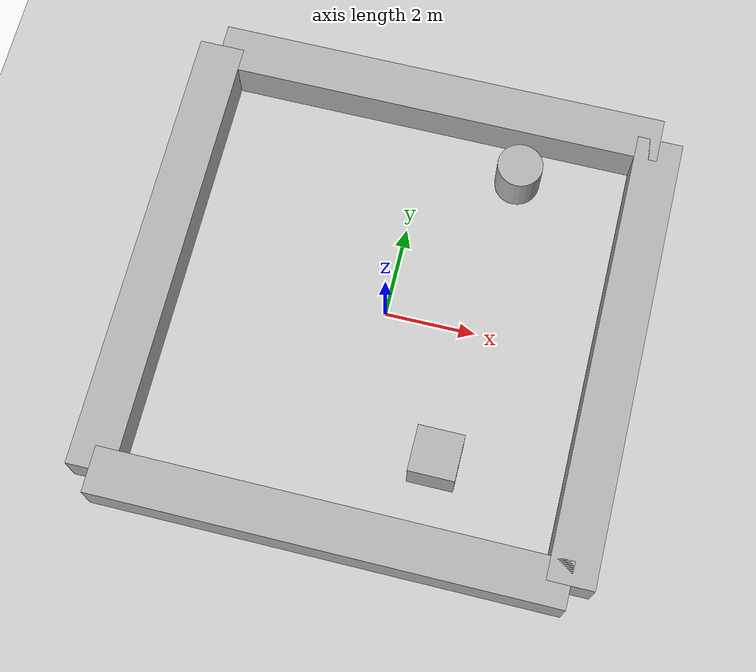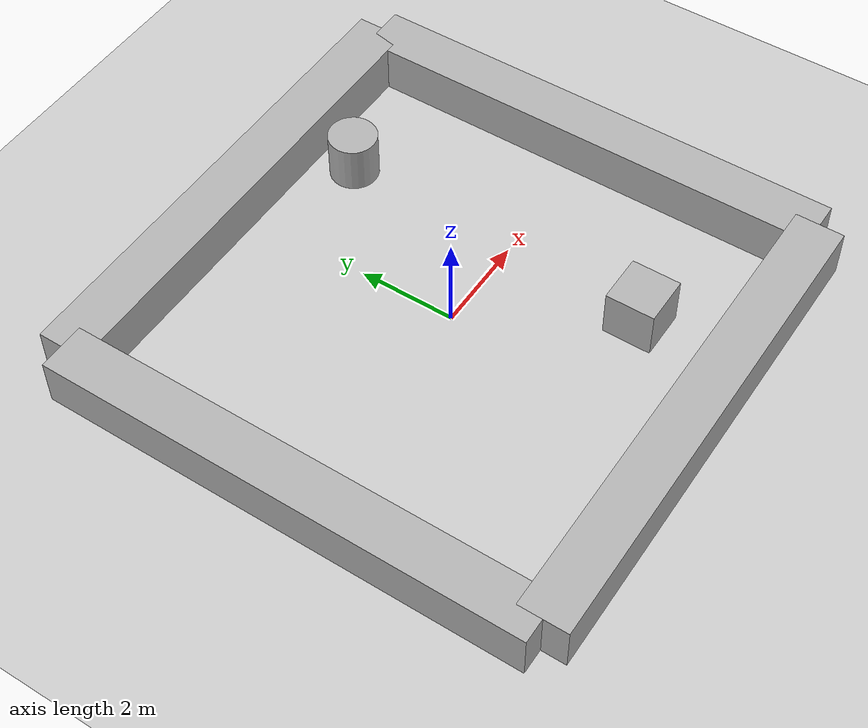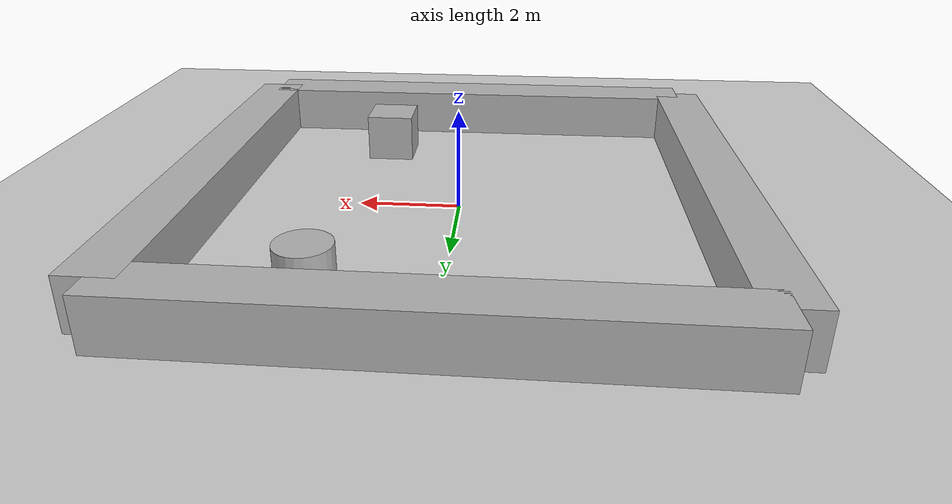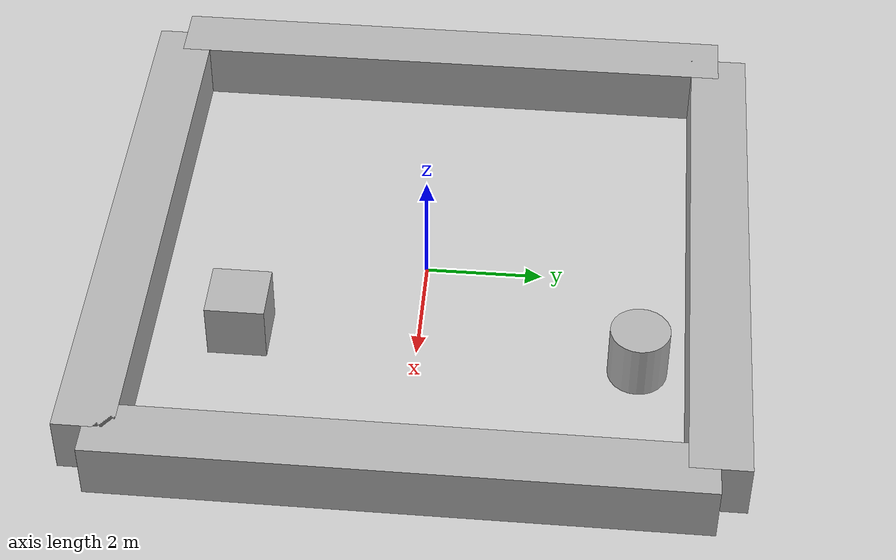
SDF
<sdf version='1.10'>
  <world name='empty'>
    <physics name='1ms' type='ignored'>
      <max_step_size>0.001</max_step_size>
      <real_time_factor>1</real_time_factor>
      <real_time_update_rate>1000</real_time_update_rate>
    </physics>
    <plugin name='gz::sim::systems::Physics' filename='gz-sim-physics-system'/>
    <plugin name='gz::sim::systems::UserCommands' filename='gz-sim-user-commands-system'/>
    <plugin name='gz::sim::systems::SceneBroadcaster' filename='gz-sim-scene-broadcaster-system'/>
    <plugin name='gz::sim::systems::Sensors' filename='gz-sim-sensors-system'>
      <render_engine>ogre2</render_engine>
    </plugin>
    <plugin name='gz::sim::systems::Contact' filename='gz-sim-contact-system'/>
    <gravity>0 0 -9.8000000000000007</gravity>
    <magnetic_field>5.5644999999999998e-06 2.2875799999999999e-05 -4.2388400000000002e-05</magnetic_field>
    <atmosphere type='adiabatic'/>
    <scene>
      <ambient>0.400000006 0.400000006 0.400000006 1</ambient>
      <background>0.699999988 0.699999988 0.699999988 1</background>
      <shadows>true</shadows>
    </scene>
    <model name='ground_plane'>
      <static>true</static>
      <link name='link'>
        <collision name='collision'>
          <geometry>
            <plane>
              <normal>0 0 1</normal>
              <size>100 100</size>
            </plane>
          </geometry>
          <surface>
            <friction>
              <ode/>
            </friction>
            <bounce/>
            <contact/>
          </surface>
        </collision>
        <visual name='visual'>
          <geometry>
            <plane>
              <normal>0 0 1</normal>
              <size>100 100</size>
            </plane>
          </geometry>
          <material>
            <ambient>0.800000012 0.800000012 0.800000012 1</ambient>
            <diffuse>0.800000012 0.800000012 0.800000012 1</diffuse>
            <specular>0.800000012 0.800000012 0.800000012 1</specular>
          </material>
        </visual>
        <pose>0 0 0 0 0 0</pose>
        <inertial>
          <pose>0 0 0 0 0 0</pose>
          <mass>1</mass>
          <inertia>
            <ixx>1</ixx>
            <ixy>0</ixy>
            <ixz>0</ixz>
            <iyy>1</iyy>
            <iyz>0</iyz>
            <izz>1</izz>
          </inertia>
        </inertial>
        <enable_wind>false</enable_wind>
      </link>
      <pose>0 0 0 0 0 0</pose>
      <self_collide>false</self_collide>
    </model>

    <model name='north_wall'>
      <pose>5 0 0.5 0.0, 0.0, 0.0</pose>
      <link name='box_link'>
        <inertial>
          <inertia>
            <ixx>0.16666</ixx>
            <ixy>0</ixy>
            <ixz>0</ixz>
            <iyy>0.16666</iyy>
            <iyz>0</iyz>
            <izz>0.16666</izz>
          </inertia>
          <mass>1</mass>
          <pose>0 0 0 0 0 0</pose>
        </inertial>
        <collision name='box_collision'>
          <geometry>
            <box>
              <size>1 10 1</size>
            </box>
          </geometry>
          <surface>
            <friction>
              <ode/>
            </friction>
            <bounce/>
            <contact/>
          </surface>
        </collision>
        <visual name='box_visual'>
          <geometry>
            <box>
              <size>1 10 1</size>
            </box>
          </geometry>
          <material>
            <ambient>0.300000012 0.300000012 0.300000012 1</ambient>
            <diffuse>0.699999988 0.699999988 0.699999988 1</diffuse>
            <specular>1 1 1 1</specular>
          </material>
        </visual>
        <pose>0 0 0 0 0 0</pose>
        <enable_wind>false</enable_wind>
      </link>
      <static>true</static>
      <self_collide>false</self_collide>
    </model>
    <model name='south_wall'>
      <pose>-5 0 0.5 0.0, 0.0, 0.0</pose>
      <link name='box_link'>
        <inertial>
          <inertia>
            <ixx>0.16666</ixx>
            <ixy>0</ixy>
            <ixz>0</ixz>
            <iyy>0.16666</iyy>
            <iyz>0</iyz>
            <izz>0.16666</izz>
          </inertia>
          <mass>1</mass>
          <pose>0 0 0 0 0 0</pose>
        </inertial>
        <collision name='box_collision'>
          <geometry>
            <box>
              <size>1 10 1</size>
            </box>
          </geometry>
          <surface>
            <friction>
              <ode/>
            </friction>
            <bounce/>
            <contact/>
          </surface>
        </collision>
        <visual name='box_visual'>
          <geometry>
            <box>
              <size>1 10 1</size>
            </box>
          </geometry>
          <material>
            <ambient>0.300000012 0.300000012 0.300000012 1</ambient>
            <diffuse>0.699999988 0.699999988 0.699999988 1</diffuse>
            <specular>1 1 1 1</specular>
          </material>
        </visual>
        <pose>0 0 0 0 0 0</pose>
        <enable_wind>false</enable_wind>
      </link>
      <static>true</static>
      <self_collide>false</self_collide>
    </model>
    <model name='west_wall'>
      <pose>0 5 0.5 0.0, 0.0, 0.0</pose>
      <link name='box_link'>
        <inertial>
          <inertia>
            <ixx>0.16666</ixx>
            <ixy>0</ixy>
            <ixz>0</ixz>
            <iyy>0.16666</iyy>
            <iyz>0</iyz>
            <izz>0.16666</izz>
          </inertia>
          <mass>1</mass>
          <pose>0 0 0 0 0 0</pose>
        </inertial>
        <collision name='box_collision'>
          <geometry>
            <box>
              <size>10 1 1</size>
            </box>
          </geometry>
          <surface>
            <friction>
              <ode/>
            </friction>
            <bounce/>
            <contact/>
          </surface>
        </collision>
        <visual name='box_visual'>
          <geometry>
            <box>
              <size>10 1 1</size>
            </box>
          </geometry>
          <material>
            <ambient>0.300000012 0.300000012 0.300000012 1</ambient>
            <diffuse>0.699999988 0.699999988 0.699999988 1</diffuse>
            <specular>1 1 1 1</specular>
          </material>
        </visual>
        <pose>0 0 0 0 0 0</pose>
        <enable_wind>false</enable_wind>
      </link>
      <static>true</static>
      <self_collide>false</self_collide>
    </model>
    <model name='east_wall_wall'>
      <pose>0 -5 0.5 0.0, 0.0, 0.0</pose>
      <link name='box_link'>
        <inertial>
          <inertia>
            <ixx>0.16666</ixx>
            <ixy>0</ixy>
            <ixz>0</ixz>
            <iyy>0.16666</iyy>
            <iyz>0</iyz>
            <izz>0.16666</izz>
          </inertia>
          <mass>1</mass>
          <pose>0 0 0 0 0 0</pose>
        </inertial>
        <collision name='box_collision'>
          <geometry>
            <box>
              <size>10 1 1</size>
            </box>
          </geometry>
          <surface>
            <friction>
              <ode/>
            </friction>
            <bounce/>
            <contact/>
          </surface>
        </collision>
        <visual name='box_visual'>
          <geometry>
            <box>
              <size>10 1 1</size>
            </box>
          </geometry>
          <material>
            <ambient>0.300000012 0.300000012 0.300000012 1</ambient>
            <diffuse>0.699999988 0.699999988 0.699999988 1</diffuse>
            <specular>1 1 1 1</specular>
          </material>
        </visual>
        <pose>0 0 0 0 0 0</pose>
        <enable_wind>false</enable_wind>
      </link>
      <static>true</static>
      <self_collide>false</self_collide>
    </model>

    <model name='box'>
      <pose>1.8029219467110664 -3 0.49999999990199806 6.2287739151293738e-22 9.3279666454713669e-22 -3.6315533669320137e-22</pose>
      <link name='box_link'>
        <inertial>
          <inertia>
            <ixx>0.16666</ixx>
            <ixy>0</ixy>
            <ixz>0</ixz>
            <iyy>0.16666</iyy>
            <iyz>0</iyz>
            <izz>0.16666</izz>
          </inertia>
          <mass>1</mass>
          <pose>0 0 0 0 0 0</pose>
        </inertial>
        <collision name='box_collision'>
          <geometry>
            <box>
              <size>1 1 1</size>
            </box>
          </geometry>
          <surface>
            <friction>
              <ode/>
            </friction>
            <bounce/>
            <contact/>
          </surface>
        </collision>
        <visual name='box_visual'>
          <geometry>
            <box>
              <size>1 1 1</size>
            </box>
          </geometry>
          <material>
            <ambient>0.300000012 0.300000012 0.300000012 1</ambient>
            <diffuse>0.699999988 0.699999988 0.699999988 1</diffuse>
            <specular>1 1 1 1</specular>
          </material>
        </visual>
        <pose>0 0 0 0 0 0</pose>
        <enable_wind>false</enable_wind>
      </link>
      <static>false</static>
      <self_collide>false</self_collide>
    </model>
    <model name='cylinder'>
      <pose>2.1278173043812618 3.7029515542140965 0.49999942638036005 2.4289046005190011e-20 1.5754678275059134e-20 -9.0169543863959e-21</pose>
      <link name='cylinder_link'>
        <inertial>
          <inertia>
            <ixx>0.14580000000000001</ixx>
            <ixy>0</ixy>
            <ixz>0</ixz>
            <iyy>0.14580000000000001</iyy>
            <iyz>0</iyz>
            <izz>0.125</izz>
          </inertia>
          <mass>1</mass>
          <pose>0 0 0 0 0 0</pose>
        </inertial>
        <collision name='cylinder_collision'>
          <geometry>
            <cylinder>
              <radius>0.5</radius>
              <length>1</length>
            </cylinder>
          </geometry>
          <surface>
            <friction>
              <ode/>
            </friction>
            <bounce/>
            <contact/>
          </surface>
        </collision>
        <visual name='cylinder_visual'>
          <geometry>
            <cylinder>
              <radius>0.5</radius>
              <length>1</length>
            </cylinder>
          </geometry>
          <material>
            <ambient>0.300000012 0.300000012 0.300000012 1</ambient>
            <diffuse>0.699999988 0.699999988 0.699999988 1</diffuse>
            <specular>1 1 1 1</specular>
          </material>
        </visual>
        <pose>0 0 0 0 0 0</pose>
        <enable_wind>false</enable_wind>
      </link>
      <static>false</static>
      <self_collide>false</self_collide>
    </model>
    <light name='sun' type='directional'>
      <pose>0 0 10 0 0 0</pose>
      <cast_shadows>true</cast_shadows>
      <intensity>1</intensity>
      <direction>-0.5 0.10000000000000001 -0.90000000000000002</direction>
      <diffuse>0.800000012 0.800000012 0.800000012 1</diffuse>
      <specular>0.200000003 0.200000003 0.200000003 1</specular>
      <attenuation>
        <range>1000</range>
        <linear>0.01</linear>
        <constant>0.90000000000000002</constant>
        <quadratic>0.001</quadratic>
      </attenuation>
      <spot>
        <inner_angle>0</inner_angle>
        <outer_angle>0</outer_angle>
        <falloff>0</falloff>
      </spot>
    </light>
  </world>
</sdf>
